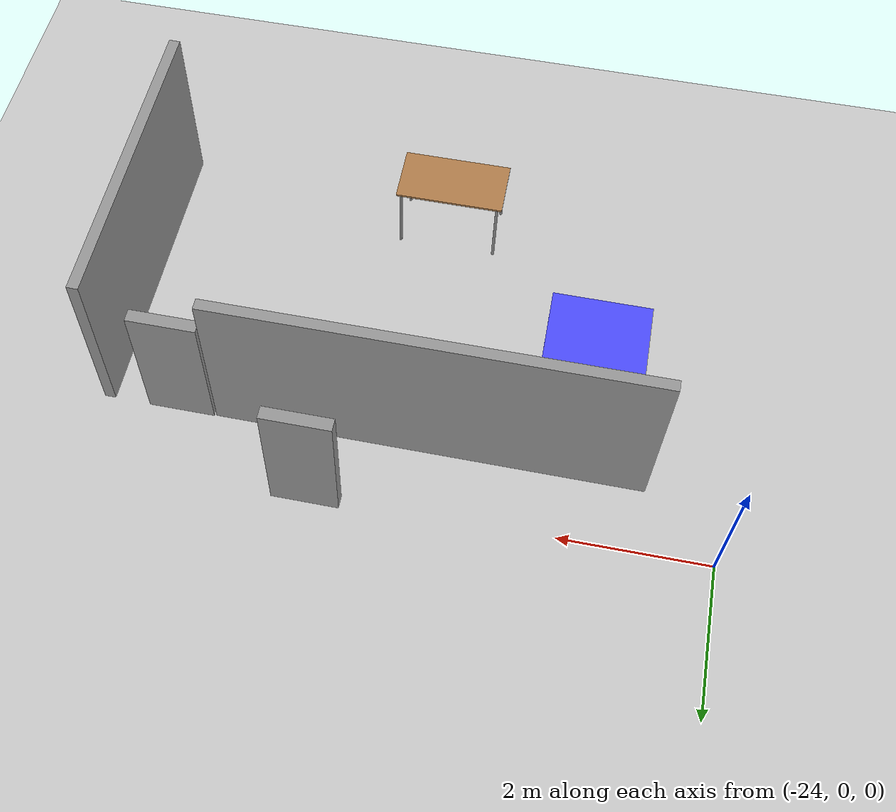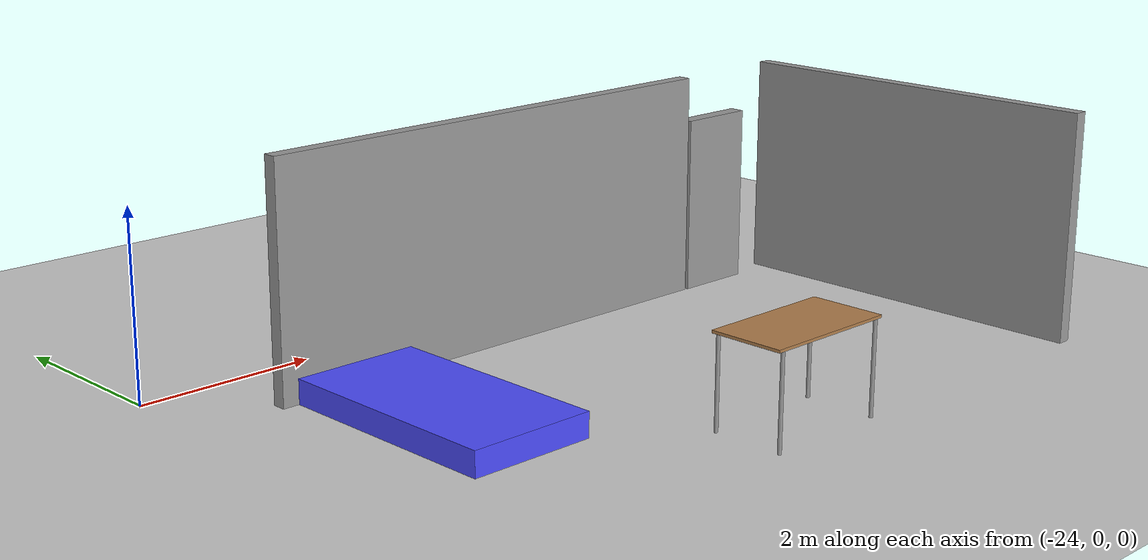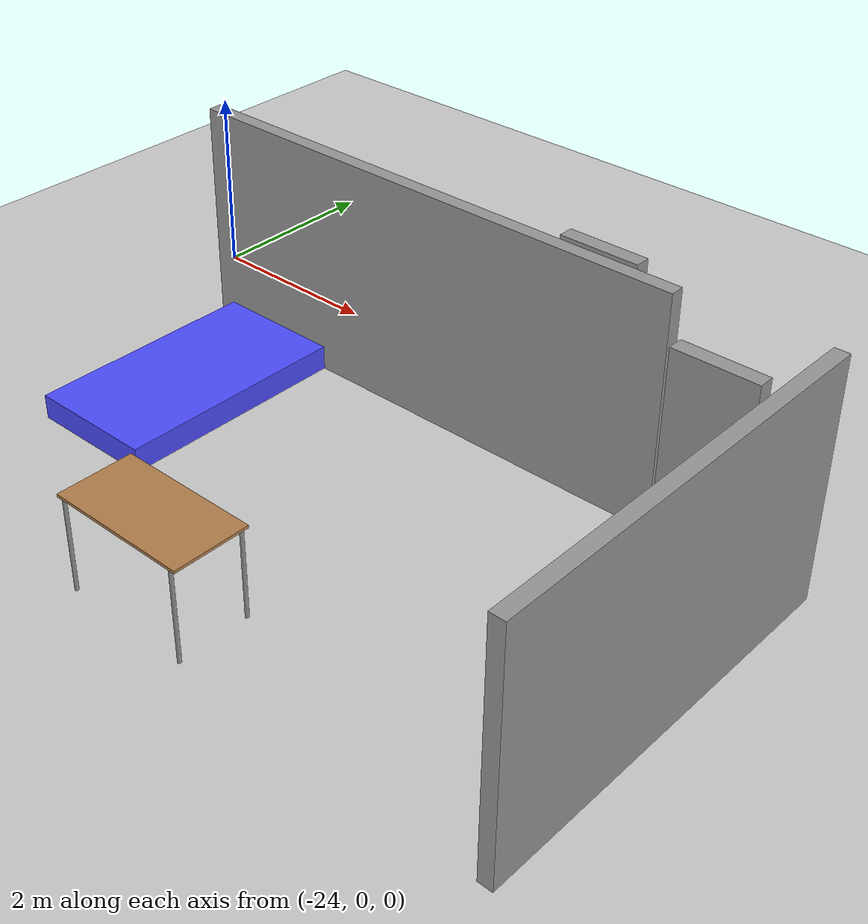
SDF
<sdf version="1.7">
 <world name="default">
  <model name="ground_plane">
   <static>1</static>
   <link name="link">
    <collision name="collision">
     <geometry><plane><normal>0 0 1</normal><size>100 100</size></plane></geometry>
     <surface><friction><ode><mu>100</mu><mu2>50</mu2></ode></friction></surface>
    </collision>
    <visual name="visual">
     <cast_shadows>0</cast_shadows>
     <geometry><plane><normal>0 0 1</normal><size>100 100</size></plane></geometry>
     <material>
      <script><uri>file://media/materials/scripts/gazebo.material</uri><name>Gazebo/Grey</name></script>
     </material>
    </visual>
   </link>
  </model>
  <model name="table_0">
   <static>1</static>
   <link name="link">
    <collision name="surface">
     <pose>0 0 1 0 -0 0</pose>
     <geometry><box><size>1.5 0.8 0.03</size></box></geometry>
     <surface><friction><ode><mu>0.6</mu><mu2>0.6</mu2></ode></friction></surface>
    </collision>
    <visual name="visual1">
     <pose>0 0 1 0 -0 0</pose>
     <geometry><box><size>1.5 0.8 0.03</size></box></geometry>
     <material>
      <script><uri>file://media/materials/scripts/gazebo.material</uri><name>Gazebo/Wood</name></script>
     </material>
    </visual>
    <collision name="front_left_leg">
     <pose>0.68 0.38 0.5 0 -0 0</pose>
     <geometry><cylinder><radius>0.02</radius><length>1</length></cylinder></geometry>
    </collision>
    <visual name="front_left_leg">
     <pose>0.68 0.38 0.5 0 -0 0</pose>
     <geometry><cylinder><radius>0.02</radius><length>1</length></cylinder></geometry>
     <material>
      <script><uri>file://media/materials/scripts/gazebo.material</uri><name>Gazebo/Grey</name></script>
     </material>
    </visual>
    <collision name="front_right_leg">
     <pose>0.68 -0.38 0.5 0 -0 0</pose>
     <geometry><cylinder><radius>0.02</radius><length>1</length></cylinder></geometry>
    </collision>
    <visual name="front_right_leg">
     <pose>0.68 -0.38 0.5 0 -0 0</pose>
     <geometry><cylinder><radius>0.02</radius><length>1</length></cylinder></geometry>
     <material>
      <script><uri>file://media/materials/scripts/gazebo.material</uri><name>Gazebo/Grey</name></script>
     </material>
    </visual>
    <collision name="back_right_leg">
     <pose>-0.68 -0.38 0.5 0 -0 0</pose>
     <geometry><cylinder><radius>0.02</radius><length>1</length></cylinder></geometry>
    </collision>
    <visual name="back_right_leg">
     <pose>-0.68 -0.38 0.5 0 -0 0</pose>
     <geometry><cylinder><radius>0.02</radius><length>1</length></cylinder></geometry>
     <material>
      <script><uri>file://media/materials/scripts/gazebo.material</uri><name>Gazebo/Grey</name></script>
     </material>
    </visual>
    <collision name="back_left_leg">
     <pose>-0.68 0.38 0.5 0 -0 0</pose>
     <geometry><cylinder><radius>0.02</radius><length>1</length></cylinder></geometry>
    </collision>
    <visual name="back_left_leg">
     <pose>-0.68 0.38 0.5 0 -0 0</pose>
     <geometry><cylinder><radius>0.02</radius><length>1</length></cylinder></geometry>
     <material>
      <script><uri>file://media/materials/scripts/gazebo.material</uri><name>Gazebo/Grey</name></script>
     </material>
    </visual>
   </link>
   <pose>-19.8116 -4.69893 0 0 -0 0</pose>
  </model>
  <model name="bed_1">
   <link name="link">
    <inertial>
     <mass>1</mass>
     <inertia>
      <ixx>0.166667</ixx>
      <ixy>0</ixy>
      <ixz>0</ixz>
      <iyy>0.166667</iyy>
      <iyz>0</iyz>
      <izz>0.166667</izz>
     </inertia>
    </inertial>
    <visual name="visual">
     <geometry><box><size>1.40955 2.56695 0.267057</size></box></geometry>
     <material>
      <script><name>Gazebo/Grey</name><uri>file://media/materials/scripts/gazebo.material</uri></script>
      <shader type="pixel"><normal_map>__default__</normal_map></shader>
      <ambient>0.3 0.3 1 0</ambient>
      <diffuse>0.7 0.7 0.7 1</diffuse>
      <specular>0.01 0.01 0.01 1</specular>
      <emissive>0 0 0 1</emissive>
     </material>
    </visual>
    <collision name="collision">
     <geometry><box><size>1.40955 2.56695 0.267057</size></box></geometry>
     <surface>
      <friction>
       <ode><mu>1</mu><mu2>1</mu2><fdir1>0 0 0</fdir1><slip1>0</slip1><slip2>0</slip2></ode>
       <torsional>
        <coefficient>1</coefficient>
        <patch_radius>0</patch_radius>
        <surface_radius>0</surface_radius>
        <use_patch_radius>1</use_patch_radius>
        <ode><slip>0</slip></ode>
       </torsional>
      </friction>
      <bounce><restitution_coefficient>0</restitution_coefficient><threshold>1e+06</threshold></bounce>
      <contact>
       <collide_without_contact>0</collide_without_contact>
       <collide_without_contact_bitmask>1</collide_without_contact_bitmask>
       <collide_bitmask>1</collide_bitmask>
       <ode>
        <soft_cfm>0</soft_cfm>
        <soft_erp>0.2</soft_erp>
        <kp>1e+13</kp>
        <kd>1</kd>
        <max_vel>0.01</max_vel>
        <min_depth>0</min_depth>
       </ode>
       <bullet>
        <split_impulse>1</split_impulse>
        <split_impulse_penetration_threshold>-0.01</split_impulse_penetration_threshold>
        <soft_cfm>0</soft_cfm>
        <soft_erp>0.2</soft_erp>
        <kp>1e+13</kp>
        <kd>1</kd>
       </bullet>
      </contact>
     </surface>
    </collision>
   </link>
   <static>0</static>
   <pose>-22.1577 -2.32412 0.133524 -0 -7e-06 -0.000225</pose>
  </model>
  <model name="Building">
   <link name="Door_2">
    <pose>-7.11651 -0.239145 0 0 -0 0</pose>
    <visual name="Door_2_Visual">
     <pose>0 0 1 0 -0 0</pose>
     <geometry><box><size>0.9 0.17 2</size></box></geometry>
     <material>
      <script><uri>file://media/materials/scripts/gazebo.material</uri><name>Gazebo/Grey</name></script>
      <shader type="pixel"/>
      <ambient>0.3 0.3 0.3 1</ambient>
      <diffuse>0.7 0.7 0.7 1</diffuse>
      <specular>0.01 0.01 0.01 1</specular>
      <emissive>0 0 0 1</emissive>
     </material>
    </visual>
    <collision name="Door_2_Collision">
     <pose>0 0 1 0 -0 0</pose>
     <geometry><box><size>0.9 0.17 2</size></box></geometry>
     <surface>
      <friction>
       <ode><mu>1</mu><mu2>1</mu2><fdir1>0 0 0</fdir1><slip1>0</slip1><slip2>0</slip2></ode>
       <torsional>
        <coefficient>1</coefficient>
        <patch_radius>0</patch_radius>
        <surface_radius>0</surface_radius>
        <use_patch_radius>1</use_patch_radius>
        <ode><slip>0</slip></ode>
       </torsional>
      </friction>
      <bounce><restitution_coefficient>0</restitution_coefficient><threshold>1e+06</threshold></bounce>
      <contact>
       <collide_without_contact>0</collide_without_contact>
       <collide_without_contact_bitmask>1</collide_without_contact_bitmask>
       <collide_bitmask>1</collide_bitmask>
       <ode>
        <soft_cfm>0</soft_cfm>
        <soft_erp>0.2</soft_erp>
        <kp>1e+13</kp>
        <kd>1</kd>
        <max_vel>0.01</max_vel>
        <min_depth>0</min_depth>
       </ode>
       <bullet>
        <split_impulse>1</split_impulse>
        <split_impulse_penetration_threshold>-0.01</split_impulse_penetration_threshold>
        <soft_cfm>0</soft_cfm>
        <soft_erp>0.2</soft_erp>
        <kp>1e+13</kp>
        <kd>1</kd>
       </bullet>
      </contact>
     </surface>
    </collision>
   </link>
   <link name="Door_3">
    <pose>-5.17464 -1.25053 0 0 -0 0</pose>
    <visual name="Door_3_Visual">
     <pose>0 0 1 0 -0 0</pose>
     <geometry><box><size>0.9 0.17 2</size></box></geometry>
     <material>
      <script><uri>file://media/materials/scripts/gazebo.material</uri><name>Gazebo/Grey</name></script>
      <shader type="pixel"/>
      <ambient>0.3 0.3 0.3 1</ambient>
      <diffuse>0.7 0.7 0.7 1</diffuse>
      <specular>0.01 0.01 0.01 1</specular>
      <emissive>0 0 0 1</emissive>
     </material>
    </visual>
    <collision name="Door_3_Collision">
     <pose>0 0 1 0 -0 0</pose>
     <geometry><box><size>0.9 0.17 2</size></box></geometry>
     <surface>
      <friction>
       <ode><mu>1</mu><mu2>1</mu2><fdir1>0 0 0</fdir1><slip1>0</slip1><slip2>0</slip2></ode>
       <torsional>
        <coefficient>1</coefficient>
        <patch_radius>0</patch_radius>
        <surface_radius>0</surface_radius>
        <use_patch_radius>1</use_patch_radius>
        <ode><slip>0</slip></ode>
       </torsional>
      </friction>
      <bounce><restitution_coefficient>0</restitution_coefficient><threshold>1e+06</threshold></bounce>
      <contact>
       <collide_without_contact>0</collide_without_contact>
       <collide_without_contact_bitmask>1</collide_without_contact_bitmask>
       <collide_bitmask>1</collide_bitmask>
       <ode>
        <soft_cfm>0</soft_cfm>
        <soft_erp>0.2</soft_erp>
        <kp>1e+13</kp>
        <kd>1</kd>
        <max_vel>0.01</max_vel>
        <min_depth>0</min_depth>
       </ode>
       <bullet>
        <split_impulse>1</split_impulse>
        <split_impulse_penetration_threshold>-0.01</split_impulse_penetration_threshold>
        <soft_cfm>0</soft_cfm>
        <soft_erp>0.2</soft_erp>
        <kp>1e+13</kp>
        <kd>1</kd>
       </bullet>
      </contact>
     </surface>
    </collision>
   </link>
   <link name="Wall_17">
    <pose>-8.53061 -1.25053 0 0 -0 3.14159</pose>
    <visual name="Wall_17_Visual">
     <pose>0 0 1.25 0 -0 0</pose>
     <geometry><box><size>5.75 0.15 2.5</size></box></geometry>
     <material>
      <script><uri>file://media/materials/scripts/gazebo.material</uri><name>Gazebo/Grey</name></script>
      <ambient>1 1 1 1</ambient>
      <shader type="pixel"/>
      <diffuse>0.7 0.7 0.7 1</diffuse>
      <specular>0.01 0.01 0.01 1</specular>
      <emissive>0 0 0 1</emissive>
     </material>
     <meta><layer>0</layer></meta>
    </visual>
    <collision name="Wall_17_Collision">
     <pose>0 0 1.25 0 -0 0</pose>
     <geometry><box><size>5.75 0.15 2.5</size></box></geometry>
     <surface>
      <friction>
       <ode><mu>1</mu><mu2>1</mu2><fdir1>0 0 0</fdir1><slip1>0</slip1><slip2>0</slip2></ode>
       <torsional>
        <coefficient>1</coefficient>
        <patch_radius>0</patch_radius>
        <surface_radius>0</surface_radius>
        <use_patch_radius>1</use_patch_radius>
        <ode><slip>0</slip></ode>
       </torsional>
      </friction>
      <bounce><restitution_coefficient>0</restitution_coefficient><threshold>1e+06</threshold></bounce>
      <contact>
       <collide_without_contact>0</collide_without_contact>
       <collide_without_contact_bitmask>1</collide_without_contact_bitmask>
       <collide_bitmask>1</collide_bitmask>
       <ode>
        <soft_cfm>0</soft_cfm>
        <soft_erp>0.2</soft_erp>
        <kp>1e+13</kp>
        <kd>1</kd>
        <max_vel>0.01</max_vel>
        <min_depth>0</min_depth>
       </ode>
       <bullet>
        <split_impulse>1</split_impulse>
        <split_impulse_penetration_threshold>-0.01</split_impulse_penetration_threshold>
        <soft_cfm>0</soft_cfm>
        <soft_erp>0.2</soft_erp>
        <kp>1e+13</kp>
        <kd>1</kd>
       </bullet>
      </contact>
     </surface>
    </collision>
   </link>
   <link name="Wall_27">
    <pose>-4.16325 -3.30053 0 0 0 -1.5708</pose>
    <visual name="Wall_27_Visual">
     <pose>0 0 1.25 0 -0 0</pose>
     <geometry><box><size>4.25 0.15 2.5</size></box></geometry>
     <material>
      <script><uri>file://media/materials/scripts/gazebo.material</uri><name>Gazebo/Grey</name></script>
      <ambient>1 1 1 1</ambient>
      <shader type="pixel"/>
      <diffuse>0.7 0.7 0.7 1</diffuse>
      <specular>0.01 0.01 0.01 1</specular>
      <emissive>0 0 0 1</emissive>
     </material>
     <meta><layer>0</layer></meta>
    </visual>
    <collision name="Wall_27_Collision">
     <pose>0 0 1.25 0 -0 0</pose>
     <geometry><box><size>4.25 0.15 2.5</size></box></geometry>
     <surface>
      <friction>
       <ode><mu>1</mu><mu2>1</mu2><fdir1>0 0 0</fdir1><slip1>0</slip1><slip2>0</slip2></ode>
       <torsional>
        <coefficient>1</coefficient>
        <patch_radius>0</patch_radius>
        <surface_radius>0</surface_radius>
        <use_patch_radius>1</use_patch_radius>
        <ode><slip>0</slip></ode>
       </torsional>
      </friction>
      <bounce><restitution_coefficient>0</restitution_coefficient><threshold>1e+06</threshold></bounce>
      <contact>
       <collide_without_contact>0</collide_without_contact>
       <collide_without_contact_bitmask>1</collide_without_contact_bitmask>
       <collide_bitmask>1</collide_bitmask>
       <ode>
        <soft_cfm>0</soft_cfm>
        <soft_erp>0.2</soft_erp>
        <kp>1e+13</kp>
        <kd>1</kd>
        <max_vel>0.01</max_vel>
        <min_depth>0</min_depth>
       </ode>
       <bullet>
        <split_impulse>1</split_impulse>
        <split_impulse_penetration_threshold>-0.01</split_impulse_penetration_threshold>
        <soft_cfm>0</soft_cfm>
        <soft_erp>0.2</soft_erp>
        <kp>1e+13</kp>
        <kd>1</kd>
       </bullet>
      </contact>
     </surface>
    </collision>
   </link>
   <static>1</static>
   <pose>-11.6425 0.2878 0 0 -0 0</pose>
  </model>
 </world>
</sdf>
